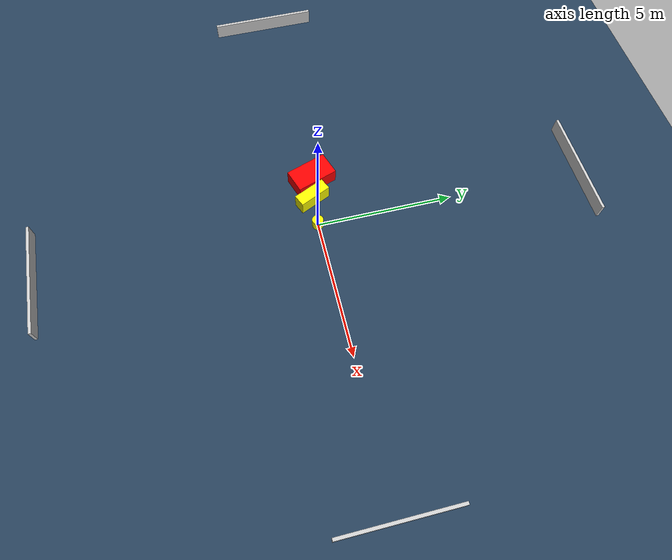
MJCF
<?xml version="1.0" ?>
<mujoco model="generated_environment">
  <option timestep="0.01" integrator="RK4" cone="elliptic"/>
  <default>
    <geom density="1"/>
  </default>
  <asset>
    <texture builtin="gradient" height="3072" name="skybox" rgb1="0.3 0.5 0.7" rgb2="0 0 0" type="skybox" width="512"/>
    <texture builtin="checker" height="300" name="groundplane" rgb1="0.2 0.3 0.4" rgb2="0.1 0.2 0.3" type="2d" width="300"/>
    <material name="groundplane" reflectance="0.2" texrepeat="5 5" texture="groundplane"/>
  </asset>
  <worldbody>
    <light dir="0 0 -1" directional="true" pos="0 0 1.5"/>
    <geom condim="3" friction="0.5 0.005 0.001" material="groundplane" name="floor" pos="0 0 0" size="0 0 0.05" type="plane"/>
    <body name="walls">
      <geom name="wall_1" condim="4" pos="-10.0 0.0 0.3" rgba="0.800000011920929 0.800000011920929 0.800000011920929 1.0" size="0.05 2.0 0.3" type="box"/>
      <geom name="wall_2" condim="4" pos="10.0 0.0 0.3" rgba="0.800000011920929 0.800000011920929 0.800000011920929 1.0" size="0.05 2.0 0.3" type="box"/>
      <geom name="wall_3" condim="4" pos="0.0 -10.0 0.3" rgba="0.800000011920929 0.800000011920929 0.800000011920929 1.0" size="2.0 0.05 0.3" type="box"/>
      <geom name="wall_4" condim="4" pos="0.0 10.0 0.3" rgba="0.800000011920929 0.800000011920929 0.800000011920929 1.0" size="2.0 0.05 0.3" type="box"/>
    </body>
    <body name="robot">
      <joint name="joint_x" type="slide" pos="0 0 0" axis="1 0 0"/>
      <joint name="joint_y" type="slide" pos="0 0 0" axis="0 1 0"/>
      <geom name="robot" type="cylinder" pos="0.0 0.0 0.2" size="0.2 0.2 0.0" mass="5.0" friction="1.0 0.005 0.0001" condim="4" rgba="1.0 1.0 0.0 1.0"/>
    </body>
    <body name="obstacle_1_movable">
      <geom name="obstacle_1_movable" condim="4" pos="-1.0535776969513515 0.04712390262968115 0.3" euler="0 0 114.08321729145054" friction="0.0 0.005 0.001" rgba="1.0 1.0 0.0 1.0" size="0.6032737356302955 0.22159812087182518 0.3" type="box" mass="0.1"/>
      <joint type="free"/>
    </body>
    <body name="obstacle_2_static">
      <geom name="obstacle_2_static" condim="4" pos="-1.903949406115937 0.22453291237896572 0.3" euler="0 0 198.68618123574393" friction="0.0 0.005 0.001" rgba="1.0 0.0 0.0 1.0" size="0.4407018029802324 0.7689541752747502 0.3" type="box"/>
    </body>
  </worldbody>
  <actuator>
    <motor name="actuator_x" joint="joint_x" gear="1" ctrlrange="-1 1"/>
    <motor name="actuator_y" joint="joint_y" gear="1" ctrlrange="-1 1"/>
  </actuator>
</mujoco>
